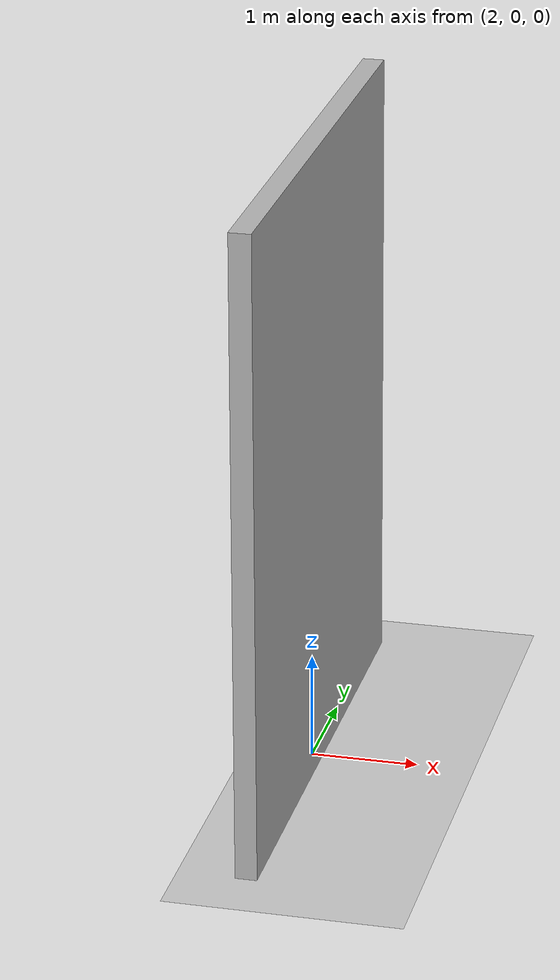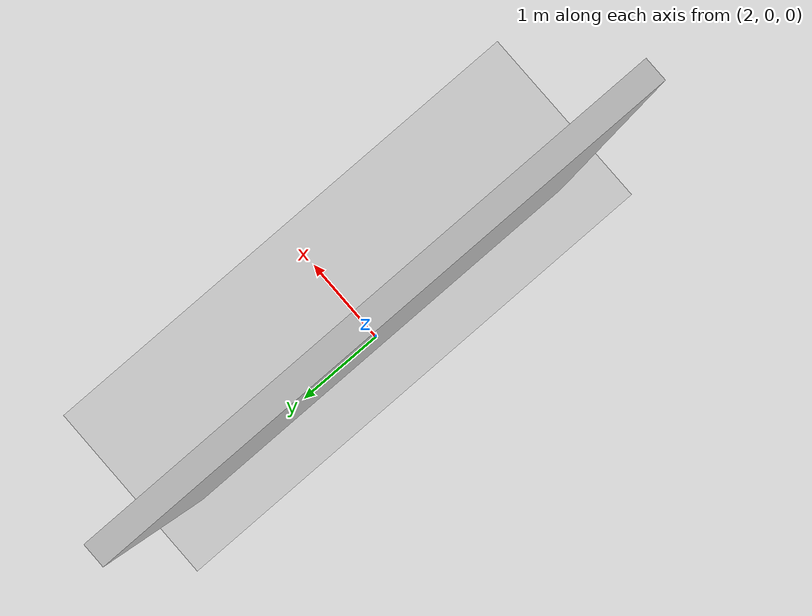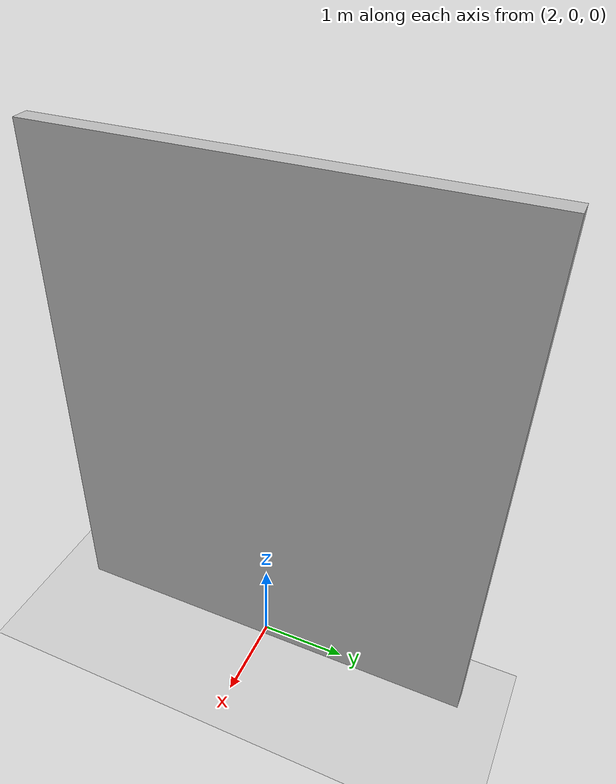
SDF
<?xml version='1.0'?>
<sdf version="1.6">
  <world name="cyberzoo_labyrinth">
    <physics type="ode">
      <max_step_size>0.004</max_step_size>
      <real_time_factor>1.0</real_time_factor>
      <real_time_update_rate>250</real_time_update_rate>
    </physics>

    <plugin name='gz::sim::systems::Physics' filename='gz-sim-physics-system'/>
    <plugin name='gz::sim::systems::UserCommands' filename='gz-sim-user-commands-system'/>
    <plugin name='gz::sim::systems::SceneBroadcaster' filename='gz-sim-scene-broadcaster-system'/>
    <plugin name='gz::sim::systems::Contact' filename='gz-sim-contact-system'/>
    <plugin name='gz::sim::systems::Imu' filename='gz-sim-imu-system'/>
    <plugin name='gz::sim::systems::AirPressure' filename='gz-sim-air-pressure-system'/>
    <plugin name='gz::sim::systems::Sensors' filename='gz-sim-sensors-system'>
      <render_engine>ogre2</render_engine>
    </plugin>
    <gui fullscreen='false'>
      <plugin name='3D View' filename='GzScene3D'>
        <gz-gui>
          <title>3D View</title>
          <property type='bool' key='showTitleBar'>0</property>
          <property type='string' key='state'>docked</property>
        </gz-gui>
        <engine>ogre2</engine>
        <scene>scene</scene>
        <ambient_light>0.5984631152222222 0.5984631152222222 0.5984631152222222</ambient_light>
        <background_color>0.8984631152222222 0.8984631152222222 0.8984631152222222</background_color>
        <camera_pose>-6 0 6 0 0.5 0</camera_pose>
      </plugin>
      <plugin name='World control' filename='WorldControl'>
        <gz-gui>
          <title>World control</title>
          <property type='bool' key='showTitleBar'>0</property>
          <property type='bool' key='resizable'>0</property>
          <property type='double' key='height'>72</property>
          <property type='double' key='width'>121</property>
          <property type='double' key='z'>1</property>
          <property type='string' key='state'>floating</property>
          <anchors target='3D View'>
            <line own='left' target='left'/>
            <line own='bottom' target='bottom'/>
          </anchors>
        </gz-gui>
        <play_pause>1</play_pause>
        <step>1</step>
        <start_paused>1</start_paused>
      </plugin>
      <plugin name='World stats' filename='WorldStats'>
        <gz-gui>
          <title>World stats</title>
          <property type='bool' key='showTitleBar'>0</property>
          <property type='bool' key='resizable'>0</property>
          <property type='double' key='height'>110</property>
          <property type='double' key='width'>290</property>
          <property type='double' key='z'>1</property>
          <property type='string' key='state'>floating</property>
          <anchors target='3D View'>
            <line own='right' target='right'/>
            <line own='bottom' target='bottom'/>
          </anchors>
        </gz-gui>
        <sim_time>1</sim_time>
        <real_time>1</real_time>
        <real_time_factor>1</real_time_factor>
        <iterations>1</iterations>
      </plugin>

    </gui>
    <gravity>0 0 -9.8</gravity>
    <magnetic_field>6e-06 2.3e-05 -4.2e-05</magnetic_field>
    <atmosphere type='adiabatic'/>
    <scene>
      <grid>false</grid>
      <ambient>0.4 0.4 0.4 1</ambient>
      <background>0.7 0.7 0.7 1</background>
      <shadows>true</shadows>
    </scene>
    <model name='ground_plane'>
      <static>true</static>
      <link name='link'>
        <collision name='collision'>
          <geometry>
            <plane>
              <normal>0 0 1</normal>
              <size>1 1</size>
            </plane>
          </geometry>
          <surface>
            <friction>
              <ode/>
            </friction>
            <bounce/>
            <contact/>
          </surface>
        </collision>
        <visual name='visual'>
          <geometry>
            <plane>
              <normal>0 0 1</normal>
              <size>100 100</size>
            </plane>
          </geometry>
          <material>
            <ambient>0.8 0.8 0.8 1</ambient>
            <diffuse>0.8 0.8 0.8 1</diffuse>
            <specular>0.8 0.8 0.8 1</specular>
          </material>
        </visual>
        <pose>0 0 0 0 -0 0</pose>
        <inertial>
          <pose>0 0 0 0 -0 0</pose>
          <mass>1</mass>
          <inertia>
            <ixx>1</ixx>
            <ixy>0</ixy>
            <ixz>0</ixz>
            <iyy>1</iyy>
            <iyz>0</iyz>
            <izz>1</izz>
          </inertia>
        </inertial>
        <enable_wind>false</enable_wind>
      </link>
      <pose>0 0 0 0 -0 0</pose>
      <self_collide>false</self_collide>
    </model>
    <light name='sunUTC' type='directional'>
      <pose>0 0 500 0 -0 0</pose>
      <cast_shadows>true</cast_shadows>
      <intensity>1</intensity>
      <direction>0.001 0.625 -0.78</direction>
      <diffuse>0.904 0.904 0.904 1</diffuse>
      <specular>0.271 0.271 0.271 1</specular>
      <attenuation>
        <range>2000</range>
        <linear>0</linear>
        <constant>1</constant>
        <quadratic>0</quadratic>
      </attenuation>
      <spot>
        <inner_angle>0</inner_angle>
        <outer_angle>0</outer_angle>
        <falloff>0</falloff>
      </spot>
    </light>

    <include>
      <uri>model://wall</uri>
      <pose>2 0 3 1.5707963 0 1.57079632679</pose>
    </include>
  </world>
</sdf>

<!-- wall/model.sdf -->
<sdf version='1.9'>
  <model name='wall' xmlns:xacro="http://www.ros.org/wiki/xacro">

	<!-- ****************** ROBOT CONSTANTS *******************************  -->
	<!-- Define the size of the robot's main chassis in meters -->
	<xacro:property name="width" value="5"/>
	<xacro:property name="height" value="6"/>
	<xacro:property name="depth" value="0.2"/>
	<xacro:property name="mass" value="1000"/>

	<link name="base_link">
		<inertial>
			<mass>1000</mass>
			<inertia>
				<ixx>2086.666666666</ixx>
				<iyy>3003.333333333333</iyy>
				<izz>5083.333333333333</izz>
			</inertia>
		</inertial>
		<gravity>true</gravity>
      		<velocity_decay/>
		<visual name="base_link_visual">
			<pose> 0 0 0 0 0 0</pose>
			<geometry>
				<box>
					<size>5 6 0.2</size>
				</box>
			</geometry>
		</visual>
		<collision name="base_link_collision">
			<pose> 0 0 0 0 0 0</pose>
			<geometry>
				<box>
					<size>5 6 0.2</size>
				</box>
			</geometry>
			<surface>
				<contact>
					<ode>
						<min_depth>0.001</min_depth>
						<max_vel>0</max_vel>
					</ode>
				</contact>
				<friction>
					<ode/>
				</friction>
			</surface>
		</collision>
	</link>
  </model>
</sdf>
